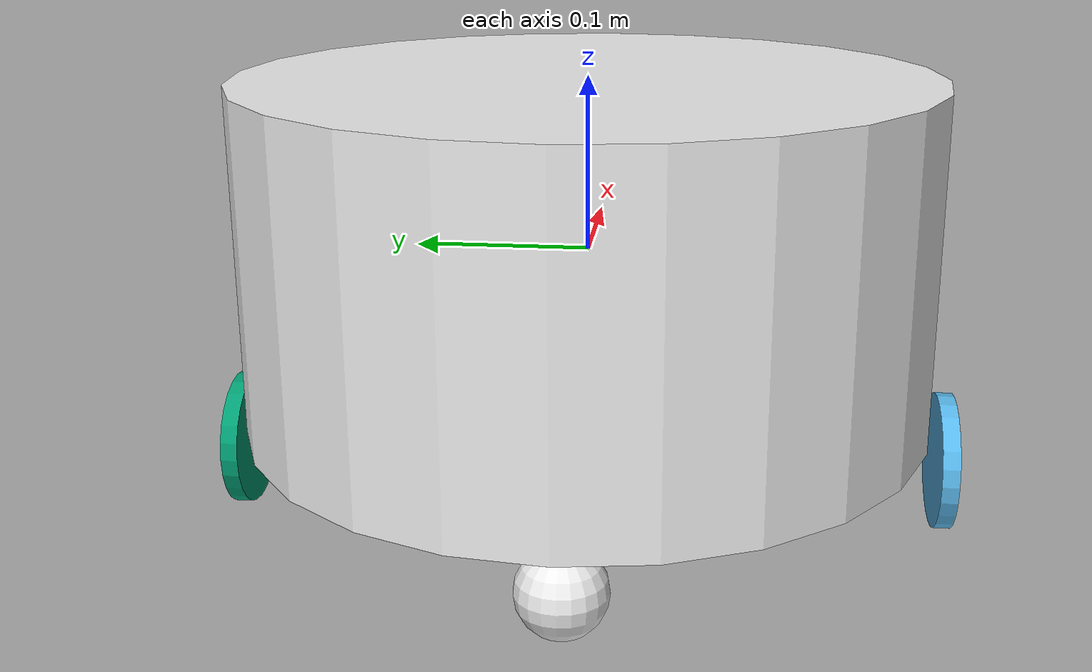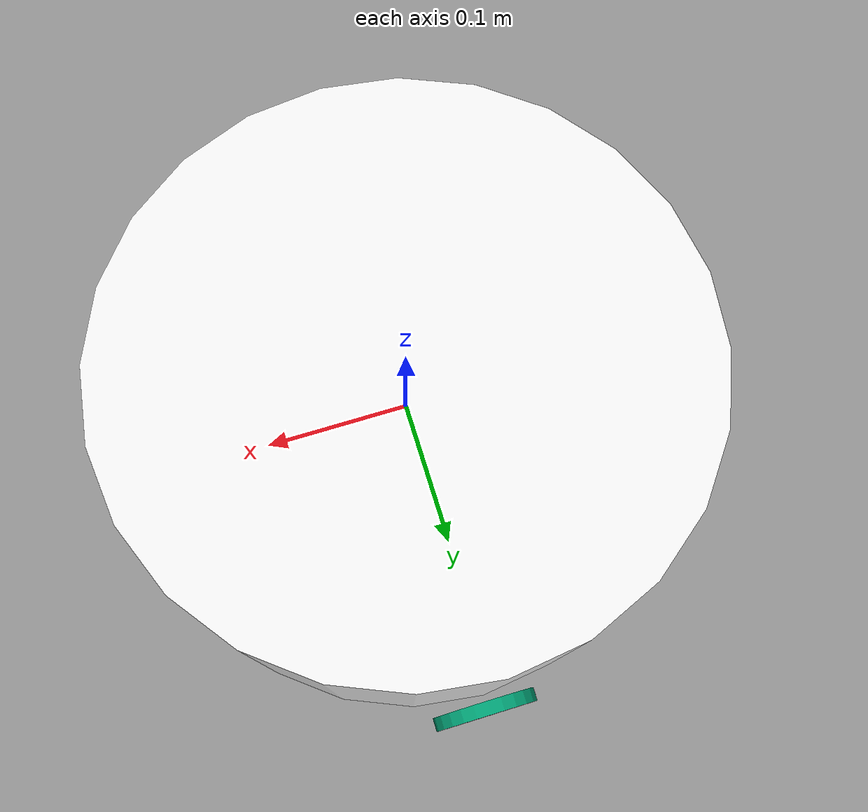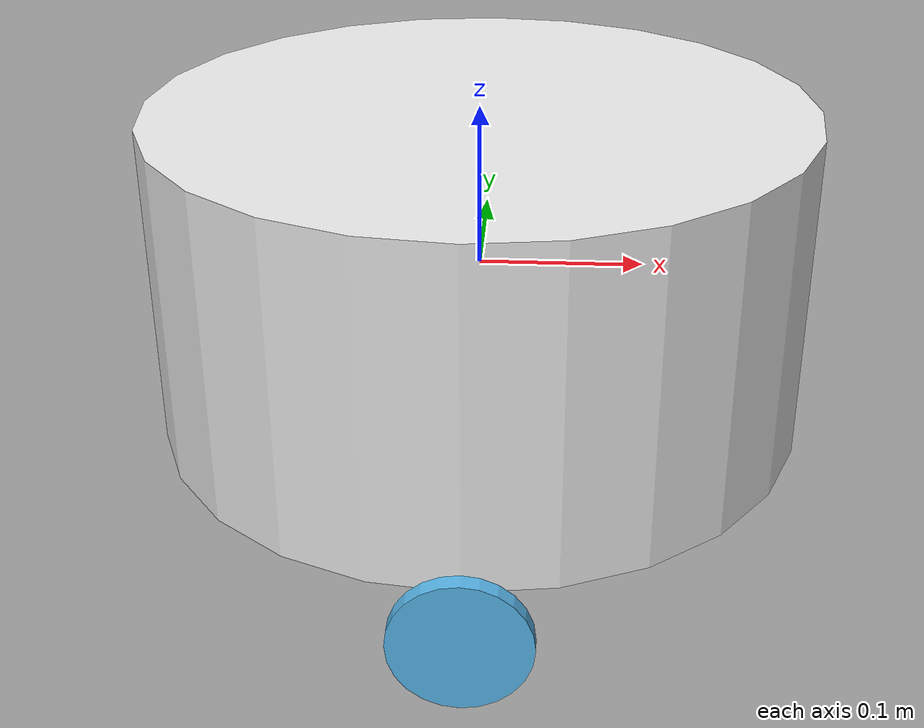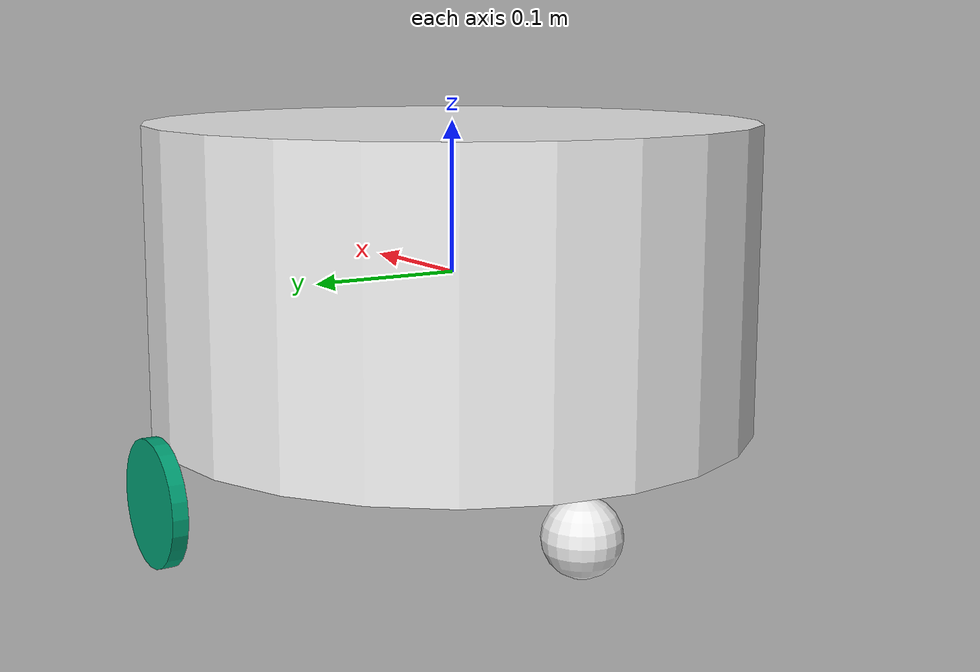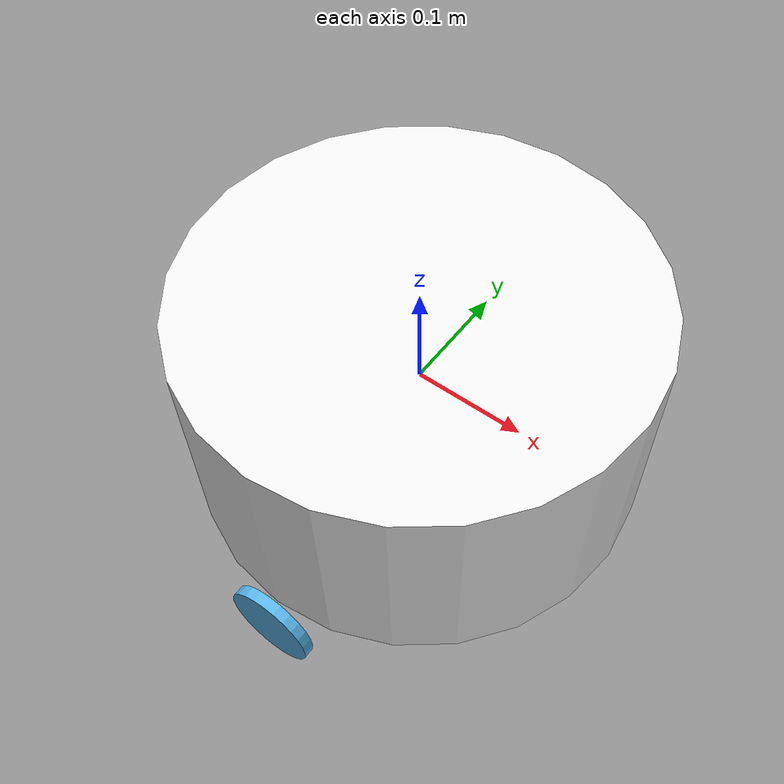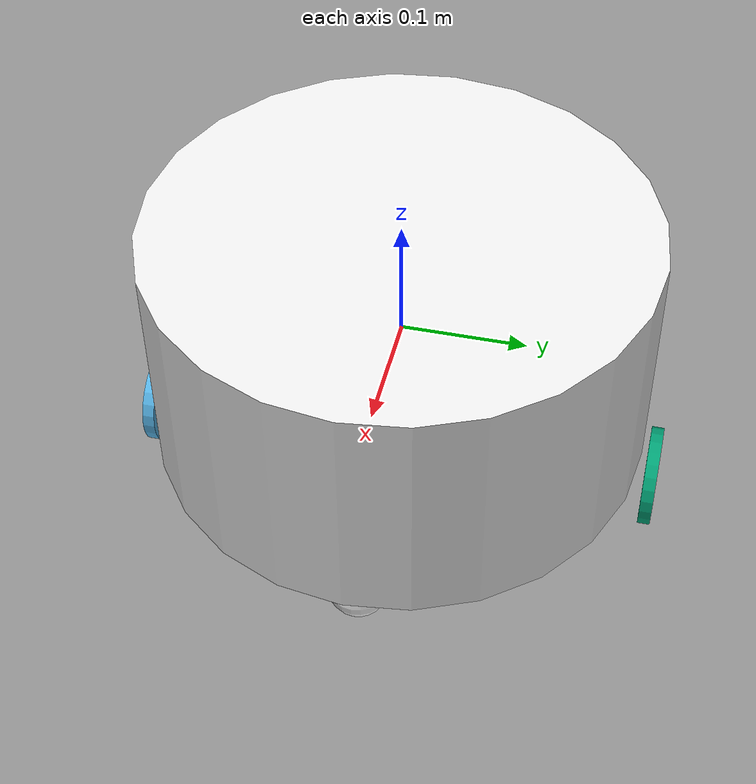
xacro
<?xml version="1.0"?>
<robot name="vacumm_robot" xmlns:xacro="https://www.ros.org/wiki/xacro" >

    <gazebo reference="base_link">
        <material>Gazebo/White</material>
        <turnGravityOff>false</turnGravityOff>
    </gazebo>
    <gazebo reference="left_Wheel_link">
        <mu1 value="1.0"/>
        <mu2 value="1.0"/>
        <kp value="600000"/>
        <kd value="3"/>
        <fdir1 value="1 0 0"/>
        <material>Gazebo/Grey</material>
        <turnGravityOff>false</turnGravityOff>
    </gazebo>
    <gazebo reference="right_Wheel_link">
        <mu1 value="1.0"/>
        <mu2 value="1.0"/>
        <kp value="600000"/>
        <kd value="3"/>
        <fdir1 value="1 0 0"/>
        <material>Gazebo/Grey</material>
        <turnGravityOff>false</turnGravityOff>
    </gazebo>
    <gazebo>
        <plugin name="gazebo_ros_control" filename="libgazebo_ros_control.so">
            <legacyMode>false</legacyMode>

        </plugin>
    </gazebo>
    <link name="base_link">
        <pose>0 0 0.1 0 0 0</pose>

        <inertial>
            <mass value="2"/>
            <origin rpy="0 0 0" xyz="0 0 0"/>
            <inertia ixx="0.026667" ixy="0" ixz="0" iyy="0.026667" iyz="0" izz="0.04"/>
        </inertial>
        <collision name="chassis_collision">
            <geometry>
                <cylinder radius="0.2" length="0.2"/>
            </geometry>
        </collision>
        <visual name="chassis">
            <origin rpy="0 0 0" xyz="0 0 0"/>
            <geometry>
                <cylinder radius="0.2" length="0.2"/>
            </geometry>
        </visual>

        <collision name="front_castor_wheel_collision">
            <origin rpy="0 0 0" xyz="0.15 0 -0.14"/>
            <geometry>
                <sphere radius="0.025" />
            </geometry>
            <surface>
                <friction>
                <ode>
                    <mu>0</mu>
                    <mu2>0</mu2>
                    <slip1>1.0</slip1>
                    <slip2>1.0</slip2>
                </ode>
                </friction>
            </surface>
        </collision>
        <visual name="front_castor_wheel">
            <origin rpy="0 0 0" xyz="0.15 0 -0.14"/>
            <geometry>
                <sphere radius="0.025" />
            </geometry>
        </visual>

        <collision name="back_castor_wheel_collision">
            <origin rpy="0 0 0" xyz="-0.15 0 -0.14"/>
            <geometry>
                <sphere radius="0.025" />
            </geometry>
            <surface>
                <friction>
                <ode>
                    <mu>0</mu>
                    <mu2>0</mu2>
                    <slip1>1.0</slip1>
                    <slip2>1.0</slip2>
                </ode>
                </friction>
            </surface>
        </collision>
        <visual name="back_castor_wheel">
            <origin rpy="0 0 0" xyz="-0.15 0 -0.14"/>
            <geometry>
                <sphere radius="0.025" />
            </geometry>
        </visual>
    </link>

    <link name="left_wheel_link">
        <inertial>
        <mass value="0.2"/>
        <origin rpy="0 1.5707 1.5707" xyz="0 0 0"/>
        <inertia ixx="0.000082" ixy="0" ixz="0" iyy="0.000082" iyz="0" izz="0.00016"/>
        </inertial>

        <collision name="link_left_wheel_collision">
            <origin rpy="0 1.5707 1.5707" xyz="0 0 0" />
            <geometry>
                <cylinder length="0.01" radius="0.04"/>
            </geometry>
        </collision>
        <visual name="link_left_wheel_visual">
            <origin rpy="0 1.5707 1.5707" xyz="0 0 0"/>
            <geometry>
                <cylinder length="0.01" radius="0.04"/>
            </geometry>
        </visual>
    </link>

    <joint name="left_wheel_joint" type="continuous">
        <origin rpy="0 0 0" xyz="0 -0.21 -0.125"/>
        <child link="left_wheel_link" />
        <parent link="base_link"/>
        <axis rpy="0 0 0" xyz="0 1 0"/>
        <limit effort="10000" velocity="1000"/>
        <joint_properties damping="1.0" friction="1.0" />
    </joint>

    <link name="right_wheel_link">
        <inertial>
        <mass value="0.2"/>
        <origin rpy="0 1.5707 1.5707" xyz="0 0 0"/>
        <inertia ixx="0.000082" ixy="0" ixz="0" iyy="0.000082" iyz="0" izz="0.00016"/>
        </inertial>

        <collision name="link_right_wheel_collision">
            <origin rpy="0 1.5707 1.5707" xyz="0 0 0" />
            <geometry>
                <cylinder length="0.01" radius="0.04"/>
            </geometry>
        </collision>
        <visual name="link_right_wheel_visual">
            <origin rpy="0 1.5707 1.5707" xyz="0 0 0"/>
            <geometry>
                <cylinder length="0.01" radius="0.04"/>
            </geometry>
        </visual>
    </link>

    <joint name="right_wheel_joint" type="continuous">
        <origin rpy="0 0 0" xyz="0 0.21 -0.125"/>
        <child link="right_wheel_link" />
        <parent link="base_link"/>
        <axis rpy="0 0 0" xyz="0 1 0"/>
        <limit effort="10000" velocity="1000"/>
        <joint_properties damping="1.0" friction="1.0" />
    </joint>

    <transmission name="left_wheel_joint_trans" type="SimpleTransmission">
        <type>transmission_interface/SimpleTransmission</type>
        <joint name="left_wheel_joint">
            <hardwareInterface>hardware_interface/VelocityJointInterface</hardwareInterface>
        </joint>
        <actuator name="left_wheel_joint_motor">
            <hardwareInterface>hardware_interface/VelocityJointInterface</hardwareInterface>
            <mechanicalReduction>1</mechanicalReduction>
        </actuator>
    </transmission>

    <transmission name="right_wheel_joint_trans" type="SimpleTransmission">
        <type>transmission_interface/SimpleTransmission</type>
        <joint name="right_wheel_joint">
            <hardwareInterface>hardware_interface/VelocityJointInterface</hardwareInterface>
        </joint>
        <actuator name="right_wheel_joint_motor">
            <hardwareInterface>hardware_interface/VelocityJointInterface</hardwareInterface>
            <mechanicalReduction>1</mechanicalReduction>
        </actuator>
    </transmission>
</robot>
